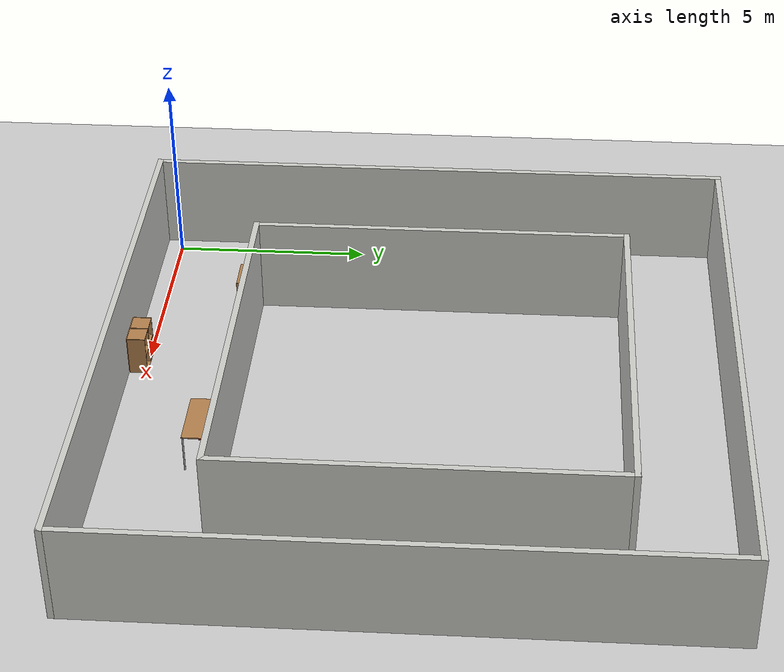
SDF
<sdf version="1.6">
 <world name="default">
  <light name="sun" type="directional">
   <pose>0 0 10 0 -0 0</pose>
   <diffuse>0.8 0.8 0.8 1</diffuse>
   <specular>0.2 0.2 0.2 1</specular>
   <attenuation>
    <range>1000</range>
    <constant>0.9</constant>
    <linear>0.01</linear>
    <quadratic>0.001</quadratic>
   </attenuation>
   <direction>-0.5 0.1 -0.9</direction>
  </light>
  <model name="ground_plane">
   <static>1</static>
   <link name="link">
    <collision name="collision">
     <geometry><plane><normal>0 0 1</normal><size>100 100</size></plane></geometry>
     <surface>
      <contact><collide_bitmask>65535</collide_bitmask></contact>
      <friction><ode><mu>100</mu><mu2>50</mu2></ode></friction>
     </surface>
    </collision>
    <visual name="visual">
     <cast_shadows>0</cast_shadows>
     <geometry><plane><normal>0 0 1</normal><size>100 100</size></plane></geometry>
     <material>
      <script><uri>file://media/materials/scripts/gazebo.material</uri><name>Gazebo/Grey</name></script>
     </material>
    </visual>
   </link>
  </model>
  <gravity>0 0 -9.8</gravity>
  <magnetic_field>6e-06 2.3e-05 -4.2e-05</magnetic_field>
  <atmosphere type="adiabatic"/>
  <physics name="default_physics" default="0" type="ode">
   <max_step_size>0.001</max_step_size>
   <real_time_factor>1</real_time_factor>
   <real_time_update_rate>1000</real_time_update_rate>
  </physics>
  <scene><ambient>0.4 0.4 0.4 1</ambient><background>0.7 0.7 0.7 1</background><shadows>1</shadows></scene>
  <audio><device>default</device></audio>
  <spherical_coordinates>
   <surface_model>EARTH_WGS84</surface_model>
   <latitude_deg>0</latitude_deg>
   <longitude_deg>0</longitude_deg>
   <elevation>0</elevation>
   <heading_deg>0</heading_deg>
  </spherical_coordinates>
  <model name="box_corridor.model">
   <pose>7 7 0 0 -0 0</pose>
   <link name="Wall_0">
    <collision name="Wall_0_Collision">
     <geometry><box><size>15.15 0.15 2.5</size></box></geometry>
     <pose>0 0 1.25 0 -0 0</pose>
    </collision>
    <visual name="Wall_0_Visual">
     <pose>0 0 1.25 0 -0 0</pose>
     <geometry><box><size>15.15 0.15 2.5</size></box></geometry>
     <material>
      <script><uri>file://media/materials/scripts/gazebo.material</uri><name>Gazebo/CeilingTiled</name></script>
      <ambient>0.921569 0.807843 0.615686 1</ambient>
     </material>
     <meta><layer>0</layer></meta>
    </visual>
    <pose>0 -7.5 0 0 -0 3.14159</pose>
   </link>
   <link name="Wall_2">
    <collision name="Wall_2_Collision">
     <geometry><box><size>15.15 0.15 2.5</size></box></geometry>
     <pose>0 0 1.25 0 -0 0</pose>
    </collision>
    <visual name="Wall_2_Visual">
     <pose>0 0 1.25 0 -0 0</pose>
     <geometry><box><size>15.15 0.15 2.5</size></box></geometry>
     <material>
      <script><uri>file://media/materials/scripts/gazebo.material</uri><name>Gazebo/CeilingTiled</name></script>
      <ambient>0.921569 0.807843 0.615686 1</ambient>
     </material>
     <meta><layer>0</layer></meta>
    </visual>
    <pose>-7.5 0 0 0 -0 1.5708</pose>
   </link>
   <link name="Wall_3">
    <collision name="Wall_3_Collision">
     <geometry><box><size>15.15 0.15 2.5</size></box></geometry>
     <pose>0 0 1.25 0 -0 0</pose>
    </collision>
    <visual name="Wall_3_Visual">
     <pose>0 0 1.25 0 -0 0</pose>
     <geometry><box><size>15.15 0.15 2.5</size></box></geometry>
     <material>
      <script><uri>file://media/materials/scripts/gazebo.material</uri><name>Gazebo/CeilingTiled</name></script>
      <ambient>0.921569 0.807843 0.615686 1</ambient>
     </material>
     <meta><layer>0</layer></meta>
    </visual>
    <pose>0 7.5 0 0 -0 0</pose>
   </link>
   <link name="Wall_4">
    <collision name="Wall_4_Collision">
     <geometry><box><size>15.15 0.15 2.5</size></box></geometry>
     <pose>0 0 1.25 0 -0 0</pose>
    </collision>
    <visual name="Wall_4_Visual">
     <pose>0 0 1.25 0 -0 0</pose>
     <geometry><box><size>15.15 0.15 2.5</size></box></geometry>
     <material>
      <script><uri>file://media/materials/scripts/gazebo.material</uri><name>Gazebo/CeilingTiled</name></script>
      <ambient>0.921569 0.807843 0.615686 1</ambient>
     </material>
     <meta><layer>0</layer></meta>
    </visual>
    <pose>7.5 0 0 0 -0 -1.5708</pose>
   </link>
   <link name="Wall_6">
    <collision name="Wall_6_Collision">
     <geometry><box><size>9.65 0.15 2.5</size></box></geometry>
     <pose>0 0 1.25 0 -0 0</pose>
    </collision>
    <visual name="Wall_6_Visual">
     <pose>0 0 1.25 0 -0 0</pose>
     <geometry><box><size>9.65 0.15 2.5</size></box></geometry>
     <material>
      <script><uri>file://media/materials/scripts/gazebo.material</uri><name>Gazebo/CeilingTiled</name></script>
      <ambient>0.921569 0.807843 0.615686 1</ambient>
     </material>
     <meta><layer>0</layer></meta>
    </visual>
    <pose>-4.5 0.25 0 0 -0 -1.5708</pose>
   </link>
   <link name="Wall_7">
    <collision name="Wall_7_Collision">
     <geometry><box><size>9.65 0.15 2.5</size></box></geometry>
     <pose>0 0 1.25 0 -0 0</pose>
    </collision>
    <visual name="Wall_7_Visual">
     <pose>0 0 1.25 0 -0 0</pose>
     <geometry><box><size>9.65 0.15 2.5</size></box></geometry>
     <material>
      <script><uri>file://media/materials/scripts/gazebo.material</uri><name>Gazebo/CeilingTiled</name></script>
      <ambient>0.921569 0.807843 0.615686 1</ambient>
     </material>
     <meta><layer>0</layer></meta>
    </visual>
    <pose>0.25 -4.5 0 0 -0 0</pose>
   </link>
   <link name="Wall_8">
    <collision name="Wall_8_Collision">
     <geometry><box><size>9.65 0.15 2.5</size></box></geometry>
     <pose>0 0 1.25 0 -0 0</pose>
    </collision>
    <visual name="Wall_8_Visual">
     <pose>0 0 1.25 0 -0 0</pose>
     <geometry><box><size>9.65 0.15 2.5</size></box></geometry>
     <material>
      <script><uri>file://media/materials/scripts/gazebo.material</uri><name>Gazebo/CeilingTiled</name></script>
      <ambient>0.921569 0.807843 0.615686 1</ambient>
     </material>
     <meta><layer>0</layer></meta>
    </visual>
    <pose>5 0.25 0 0 -0 1.5708</pose>
   </link>
   <link name="Wall_9">
    <collision name="Wall_9_Collision">
     <geometry><box><size>9.65 0.15 2.5</size></box></geometry>
     <pose>0 0 1.25 0 -0 0</pose>
    </collision>
    <visual name="Wall_9_Visual">
     <pose>0 0 1.25 0 -0 0</pose>
     <geometry><box><size>9.65 0.15 2.5</size></box></geometry>
     <material>
      <script><uri>file://media/materials/scripts/gazebo.material</uri><name>Gazebo/CeilingTiled</name></script>
      <ambient>0.760784 0.662745 0.627451 1</ambient>
     </material>
     <meta><layer>0</layer></meta>
    </visual>
    <pose>0.25 5 0 0 -0 3.14159</pose>
   </link>
   <static>1</static>
  </model>
  <model name="cabinet">
   <static>1</static>
   <link name="cabinet_bottom_plate">
    <inertial>
     <pose>0 0 -1 0 -0 0</pose>
     <inertia><ixx>2.05</ixx><ixy>0</ixy><ixz>0</ixz><iyy>2.05</iyy><iyz>0</iyz><izz>2.05</izz></inertia>
     <mass>25</mass>
    </inertial>
    <collision name="cabinet_bottom_plate_geom">
     <pose>0 0 0.01 0 -0 0</pose>
     <geometry><box><size>0.45 0.45 0.02</size></box></geometry>
    </collision>
    <visual name="cabinet_bottom_plate_geom_visual">
     <pose>0 0 0.01 0 -0 0</pose>
     <geometry><box><size>0.45 0.45 0.02</size></box></geometry>
     <material>
      <script><uri>file://media/materials/scripts/gazebo.material</uri><name>Gazebo/Wood</name></script>
     </material>
    </visual>
    <collision name="cabinet_bottom_plate_geom_cabinet_back_plate">
     <pose>0.235 0 0.51 0 -0 0</pose>
     <geometry><box><size>0.02 0.45 1.02</size></box></geometry>
    </collision>
    <visual name="cabinet_bottom_plate_geom_cabinet_back_plate_visual">
     <pose>0.235 0 0.51 0 -0 0</pose>
     <geometry><box><size>0.02 0.45 1.02</size></box></geometry>
     <material>
      <script><uri>file://media/materials/scripts/gazebo.material</uri><name>Gazebo/Wood</name></script>
     </material>
    </visual>
    <collision name="cabinet_bottom_plate_geom_cabinet_left_plate">
     <pose>0 0.235 0.51 0 -0 0</pose>
     <geometry><box><size>0.45 0.02 1.02</size></box></geometry>
    </collision>
    <visual name="cabinet_bottom_plate_geom_cabinet_left_plate_visual">
     <pose>0 0.235 0.51 0 -0 0</pose>
     <geometry><box><size>0.45 0.02 1.02</size></box></geometry>
     <material>
      <script><uri>file://media/materials/scripts/gazebo.material</uri><name>Gazebo/Wood</name></script>
     </material>
    </visual>
    <collision name="cabinet_bottom_plate_geom_cabinet_middle_plate">
     <pose>0 0 0.51 0 -0 0</pose>
     <geometry><box><size>0.45 0.45 0.02</size></box></geometry>
    </collision>
    <visual name="cabinet_bottom_plate_geom_cabinet_middle_plate_visual">
     <pose>0 0 0.51 0 -0 0</pose>
     <geometry><box><size>0.45 0.45 0.02</size></box></geometry>
     <material>
      <script><uri>file://media/materials/scripts/gazebo.material</uri><name>Gazebo/Wood</name></script>
     </material>
    </visual>
    <collision name="cabinet_bottom_plate_geom_cabinet_right_plate">
     <pose>0 -0.235 0.51 0 -0 0</pose>
     <geometry><box><size>0.45 0.02 1.02</size></box></geometry>
    </collision>
    <visual name="cabinet_bottom_plate_geom_cabinet_right_plate_visual">
     <pose>0 -0.235 0.51 0 -0 0</pose>
     <geometry><box><size>0.45 0.02 1.02</size></box></geometry>
     <material>
      <script><uri>file://media/materials/scripts/gazebo.material</uri><name>Gazebo/Wood</name></script>
     </material>
    </visual>
    <collision name="cabinet_bottom_plate_geom_cabinet_top_plate">
     <pose>0 0 1.01 0 -0 0</pose>
     <geometry><box><size>0.45 0.45 0.02</size></box></geometry>
    </collision>
    <visual name="cabinet_bottom_plate_geom_cabinet_top_plate_visual">
     <pose>0 0 1.01 0 -0 0</pose>
     <geometry><box><size>0.45 0.45 0.02</size></box></geometry>
     <material>
      <script><uri>file://media/materials/scripts/gazebo.material</uri><name>Gazebo/Wood</name></script>
     </material>
    </visual>
   </link>
   <pose>5 -0.18 0 0 0 -1.57</pose>
  </model>
  <model name="cabinet_clone">
   <static>1</static>
   <link name="cabinet_bottom_plate">
    <inertial>
     <pose>0 0 -1 0 -0 0</pose>
     <inertia><ixx>2.05</ixx><ixy>0</ixy><ixz>0</ixz><iyy>2.05</iyy><iyz>0</iyz><izz>2.05</izz></inertia>
     <mass>25</mass>
    </inertial>
    <collision name="cabinet_bottom_plate_geom">
     <pose>0 0 0.01 0 -0 0</pose>
     <geometry><box><size>0.45 0.45 0.02</size></box></geometry>
    </collision>
    <visual name="cabinet_bottom_plate_geom_visual">
     <pose>0 0 0.01 0 -0 0</pose>
     <geometry><box><size>0.45 0.45 0.02</size></box></geometry>
     <material>
      <script><uri>file://media/materials/scripts/gazebo.material</uri><name>Gazebo/Wood</name></script>
     </material>
    </visual>
    <collision name="cabinet_bottom_plate_geom_cabinet_back_plate">
     <pose>0.235 0 0.51 0 -0 0</pose>
     <geometry><box><size>0.02 0.45 1.02</size></box></geometry>
    </collision>
    <visual name="cabinet_bottom_plate_geom_cabinet_back_plate_visual">
     <pose>0.235 0 0.51 0 -0 0</pose>
     <geometry><box><size>0.02 0.45 1.02</size></box></geometry>
     <material>
      <script><uri>file://media/materials/scripts/gazebo.material</uri><name>Gazebo/Wood</name></script>
     </material>
    </visual>
    <collision name="cabinet_bottom_plate_geom_cabinet_left_plate">
     <pose>0 0.235 0.51 0 -0 0</pose>
     <geometry><box><size>0.45 0.02 1.02</size></box></geometry>
    </collision>
    <visual name="cabinet_bottom_plate_geom_cabinet_left_plate_visual">
     <pose>0 0.235 0.51 0 -0 0</pose>
     <geometry><box><size>0.45 0.02 1.02</size></box></geometry>
     <material>
      <script><uri>file://media/materials/scripts/gazebo.material</uri><name>Gazebo/Wood</name></script>
     </material>
    </visual>
    <collision name="cabinet_bottom_plate_geom_cabinet_middle_plate">
     <pose>0 0 0.51 0 -0 0</pose>
     <geometry><box><size>0.45 0.45 0.02</size></box></geometry>
    </collision>
    <visual name="cabinet_bottom_plate_geom_cabinet_middle_plate_visual">
     <pose>0 0 0.51 0 -0 0</pose>
     <geometry><box><size>0.45 0.45 0.02</size></box></geometry>
     <material>
      <script><uri>file://media/materials/scripts/gazebo.material</uri><name>Gazebo/Wood</name></script>
     </material>
    </visual>
    <collision name="cabinet_bottom_plate_geom_cabinet_right_plate">
     <pose>0 -0.235 0.51 0 -0 0</pose>
     <geometry><box><size>0.45 0.02 1.02</size></box></geometry>
    </collision>
    <visual name="cabinet_bottom_plate_geom_cabinet_right_plate_visual">
     <pose>0 -0.235 0.51 0 -0 0</pose>
     <geometry><box><size>0.45 0.02 1.02</size></box></geometry>
     <material>
      <script><uri>file://media/materials/scripts/gazebo.material</uri><name>Gazebo/Wood</name></script>
     </material>
    </visual>
    <collision name="cabinet_bottom_plate_geom_cabinet_top_plate">
     <pose>0 0 1.01 0 -0 0</pose>
     <geometry><box><size>0.45 0.45 0.02</size></box></geometry>
    </collision>
    <visual name="cabinet_bottom_plate_geom_cabinet_top_plate_visual">
     <pose>0 0 1.01 0 -0 0</pose>
     <geometry><box><size>0.45 0.45 0.02</size></box></geometry>
     <material>
      <script><uri>file://media/materials/scripts/gazebo.material</uri><name>Gazebo/Wood</name></script>
     </material>
    </visual>
   </link>
   <pose>5.48469 -0.181427 0 0 0 -1.57</pose>
  </model>
  <model name="table">
   <static>1</static>
   <link name="link">
    <collision name="surface">
     <pose>0 0 1 0 -0 0</pose>
     <geometry><box><size>1.5 0.8 0.03</size></box></geometry>
     <surface><friction><ode><mu>0.6</mu><mu2>0.6</mu2></ode></friction></surface>
    </collision>
    <visual name="visual1">
     <pose>0 0 1 0 -0 0</pose>
     <geometry><box><size>1.5 0.8 0.03</size></box></geometry>
     <material>
      <script><uri>file://media/materials/scripts/gazebo.material</uri><name>Gazebo/Wood</name></script>
     </material>
    </visual>
    <collision name="front_left_leg">
     <pose>0.68 0.38 0.5 0 -0 0</pose>
     <geometry><cylinder><radius>0.02</radius><length>1</length></cylinder></geometry>
    </collision>
    <visual name="front_left_leg">
     <pose>0.68 0.38 0.5 0 -0 0</pose>
     <geometry><cylinder><radius>0.02</radius><length>1</length></cylinder></geometry>
     <material>
      <script><uri>file://media/materials/scripts/gazebo.material</uri><name>Gazebo/Grey</name></script>
     </material>
    </visual>
    <collision name="front_right_leg">
     <pose>0.68 -0.38 0.5 0 -0 0</pose>
     <geometry><cylinder><radius>0.02</radius><length>1</length></cylinder></geometry>
    </collision>
    <visual name="front_right_leg">
     <pose>0.68 -0.38 0.5 0 -0 0</pose>
     <geometry><cylinder><radius>0.02</radius><length>1</length></cylinder></geometry>
     <material>
      <script><uri>file://media/materials/scripts/gazebo.material</uri><name>Gazebo/Grey</name></script>
     </material>
    </visual>
    <collision name="back_right_leg">
     <pose>-0.68 -0.38 0.5 0 -0 0</pose>
     <geometry><cylinder><radius>0.02</radius><length>1</length></cylinder></geometry>
    </collision>
    <visual name="back_right_leg">
     <pose>-0.68 -0.38 0.5 0 -0 0</pose>
     <geometry><cylinder><radius>0.02</radius><length>1</length></cylinder></geometry>
     <material>
      <script><uri>file://media/materials/scripts/gazebo.material</uri><name>Gazebo/Grey</name></script>
     </material>
    </visual>
    <collision name="back_left_leg">
     <pose>-0.68 0.38 0.5 0 -0 0</pose>
     <geometry><cylinder><radius>0.02</radius><length>1</length></cylinder></geometry>
    </collision>
    <visual name="back_left_leg">
     <pose>-0.68 0.38 0.5 0 -0 0</pose>
     <geometry><cylinder><radius>0.02</radius><length>1</length></cylinder></geometry>
     <material>
      <script><uri>file://media/materials/scripts/gazebo.material</uri><name>Gazebo/Grey</name></script>
     </material>
    </visual>
   </link>
   <pose>8.75271 1.96419 0 0 -0 0</pose>
  </model>
  <model name="bookshelf">
   <static>1</static>
   <link name="link">
    <inertial><mass>1</mass></inertial>
    <collision name="back">
     <pose>0 0.005 0.6 0 -0 0</pose>
     <geometry><box><size>0.9 0.01 1.2</size></box></geometry>
    </collision>
    <visual name="visual1">
     <pose>0 0.005 0.6 0 -0 0</pose>
     <geometry><box><size>0.9 0.01 1.2</size></box></geometry>
     <material>
      <script><uri>file://media/materials/scripts/gazebo.material</uri><name>Gazebo/Wood</name></script>
     </material>
    </visual>
    <collision name="left_side">
     <pose>0.45 -0.195 0.6 0 -0 0</pose>
     <geometry><box><size>0.02 0.4 1.2</size></box></geometry>
    </collision>
    <visual name="visual2">
     <pose>0.45 -0.195 0.6 0 -0 0</pose>
     <geometry><box><size>0.02 0.4 1.2</size></box></geometry>
     <material>
      <script><uri>file://media/materials/scripts/gazebo.material</uri><name>Gazebo/Wood</name></script>
     </material>
    </visual>
    <collision name="right_side">
     <pose>-0.45 -0.195 0.6 0 -0 0</pose>
     <geometry><box><size>0.02 0.4 1.2</size></box></geometry>
    </collision>
    <visual name="visual3">
     <pose>-0.45 -0.195 0.6 0 -0 0</pose>
     <geometry><box><size>0.02 0.4 1.2</size></box></geometry>
     <material>
      <script><uri>file://media/materials/scripts/gazebo.material</uri><name>Gazebo/Wood</name></script>
     </material>
    </visual>
    <collision name="bottom">
     <pose>0 -0.195 0.03 0 -0 0</pose>
     <geometry><box><size>0.88 0.4 0.06</size></box></geometry>
    </collision>
    <visual name="visual4">
     <pose>0 -0.195 0.03 0 -0 0</pose>
     <geometry><box><size>0.88 0.4 0.06</size></box></geometry>
     <material>
      <script><uri>file://media/materials/scripts/gazebo.material</uri><name>Gazebo/Wood</name></script>
     </material>
    </visual>
    <collision name="top">
     <pose>0 -0.195 1.19 0 -0 0</pose>
     <geometry><box><size>0.88 0.4 0.02</size></box></geometry>
    </collision>
    <visual name="visual5">
     <pose>0 -0.195 1.19 0 -0 0</pose>
     <geometry><box><size>0.88 0.4 0.02</size></box></geometry>
     <material>
      <script><uri>file://media/materials/scripts/gazebo.material</uri><name>Gazebo/Wood</name></script>
     </material>
    </visual>
    <collision name="low_shelf">
     <pose>0 -0.195 0.43 0 -0 0</pose>
     <geometry><box><size>0.88 0.4 0.02</size></box></geometry>
    </collision>
    <visual name="visual6">
     <pose>0 -0.195 0.43 0 -0 0</pose>
     <geometry><box><size>0.88 0.4 0.02</size></box></geometry>
     <material>
      <script><uri>file://media/materials/scripts/gazebo.material</uri><name>Gazebo/Wood</name></script>
     </material>
    </visual>
    <collision name="high_shelf">
     <pose>0 -0.195 0.8 0 -0 0</pose>
     <geometry><box><size>0.88 0.4 0.02</size></box></geometry>
    </collision>
    <visual name="visual7">
     <pose>0 -0.195 0.8 0 -0 0</pose>
     <geometry><box><size>0.88 0.4 0.02</size></box></geometry>
     <material>
      <script><uri>file://media/materials/scripts/gazebo.material</uri><name>Gazebo/Wood</name></script>
     </material>
    </visual>
   </link>
   <pose>2.90656 2.42 0 0 -0 0</pose>
  </model>
  <model name="unit_box_03">
   <link name="link">
    <inertial>
     <mass>1</mass>
     <inertia>
      <ixx>0.166667</ixx>
      <ixy>0</ixy>
      <ixz>0</ixz>
      <iyy>0.166667</iyy>
      <iyz>0</iyz>
      <izz>0.166667</izz>
     </inertia>
    </inertial>
    <visual name="visual">
     <geometry><box><size>0.3 0.3 0.3</size></box></geometry>
     <material>
      <script><name>Gazebo/Red</name><uri>file://media/materials/scripts/gazebo.material</uri></script>
      <shader type="vertex"><normal_map>__default__</normal_map></shader>
      <ambient>0.5 0.3 0.3 1</ambient>
      <diffuse>0.7 0.3 0.7 1</diffuse>
      <specular>0.01 0.01 0.01 1</specular>
      <emissive>0 0 0 1</emissive>
      <lighting>1</lighting>
     </material>
    </visual>
    <collision name="collision">
     <geometry><box><size>0.3 0.3 0.3</size></box></geometry>
     <surface>
      <friction>
       <ode><mu>1</mu><mu2>1</mu2><fdir1>0 0 0</fdir1><slip1>0</slip1><slip2>0</slip2></ode>
       <torsional>
        <coefficient>1</coefficient>
        <patch_radius>0</patch_radius>
        <surface_radius>0</surface_radius>
        <use_patch_radius>1</use_patch_radius>
        <ode><slip>0</slip></ode>
       </torsional>
      </friction>
      <bounce><restitution_coefficient>0</restitution_coefficient><threshold>1e+06</threshold></bounce>
      <contact>
       <collide_without_contact>0</collide_without_contact>
       <collide_without_contact_bitmask>1</collide_without_contact_bitmask>
       <collide_bitmask>1</collide_bitmask>
       <ode>
        <soft_cfm>0</soft_cfm>
        <soft_erp>0.2</soft_erp>
        <kp>1e+13</kp>
        <kd>1</kd>
        <max_vel>0.01</max_vel>
        <min_depth>0</min_depth>
       </ode>
       <bullet>
        <split_impulse>1</split_impulse>
        <split_impulse_penetration_threshold>-0.01</split_impulse_penetration_threshold>
        <soft_cfm>0</soft_cfm>
        <soft_erp>0.2</soft_erp>
        <kp>1e+13</kp>
        <kd>1</kd>
       </bullet>
      </contact>
     </surface>
    </collision>
   </link>
   <static>0</static>
   <pose>8.18783 1.8861 0.15 0 -0 0</pose>
  </model>
 </world>
</sdf>
